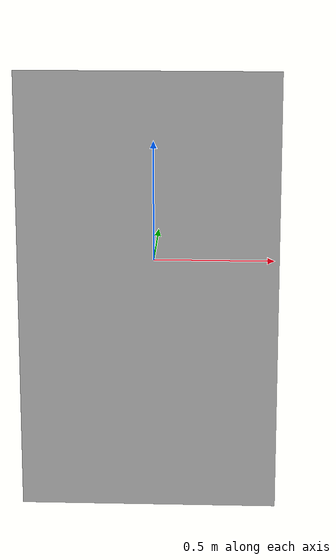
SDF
<?xml version="1.0"?>
<!-- This sdf file is based on schunk_wsg_50.sdf -->
<sdf version="1.7">
<model name="triangular_prism">
  <link name="base">
    <pose>0 0 0 0 0 0</pose>
    <visual name="visual">
      <geometry>
        <mesh>
          <scale>1 1 1</scale>
          <uri>package://symmetries/models/prisms/triangular_prism.obj</uri>
        </mesh>
      </geometry>
    </visual>
    <collision name="base_collision">
      <geometry>
        <mesh>
          <scale>1 1 1</scale>
          <uri>package://symmetries/models/prisms/triangular_prism.obj</uri>
        </mesh>
      </geometry>
    </collision>
  </link>
</model>
</sdf>
